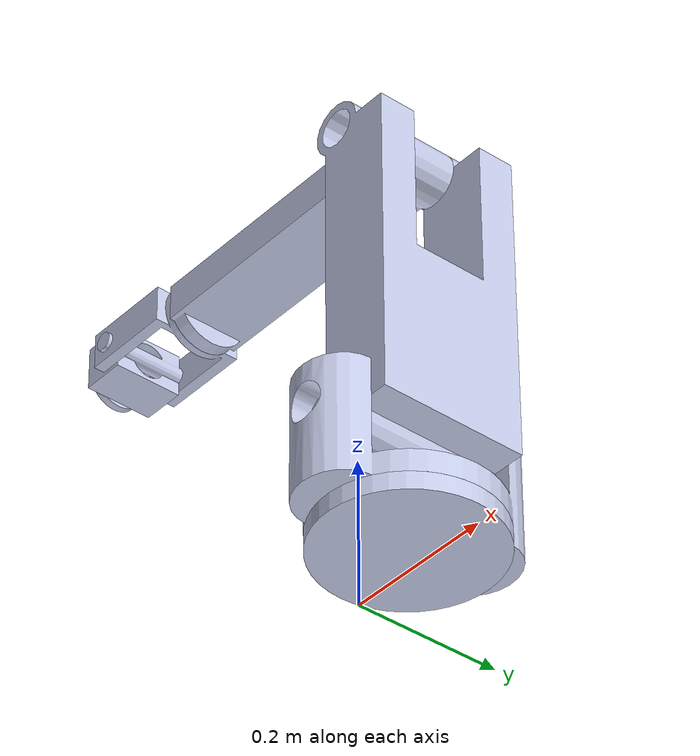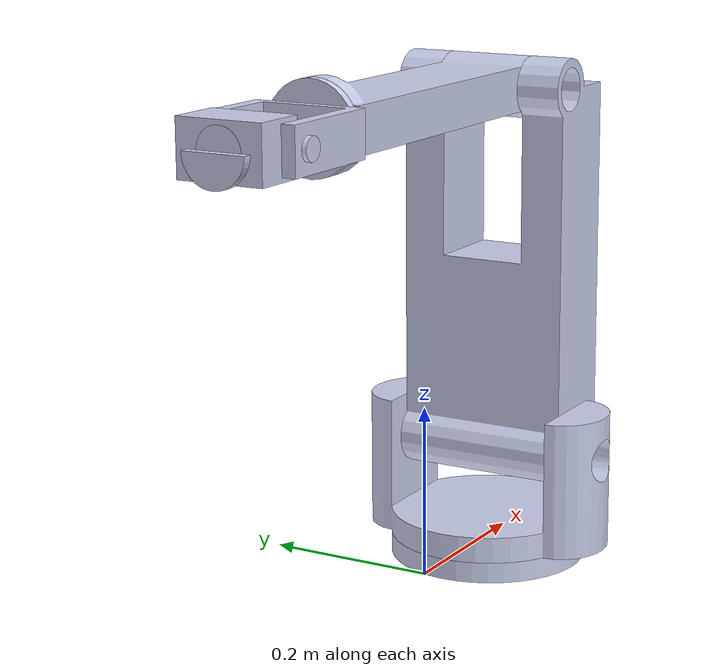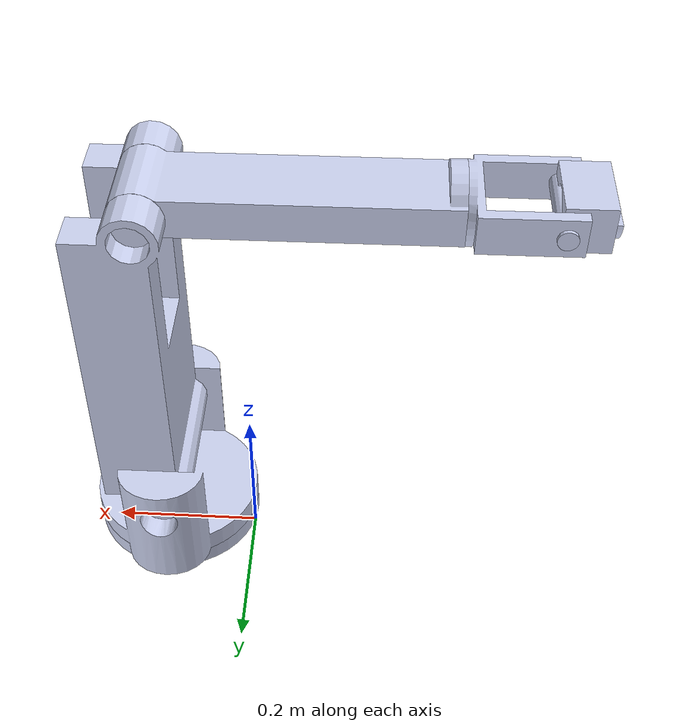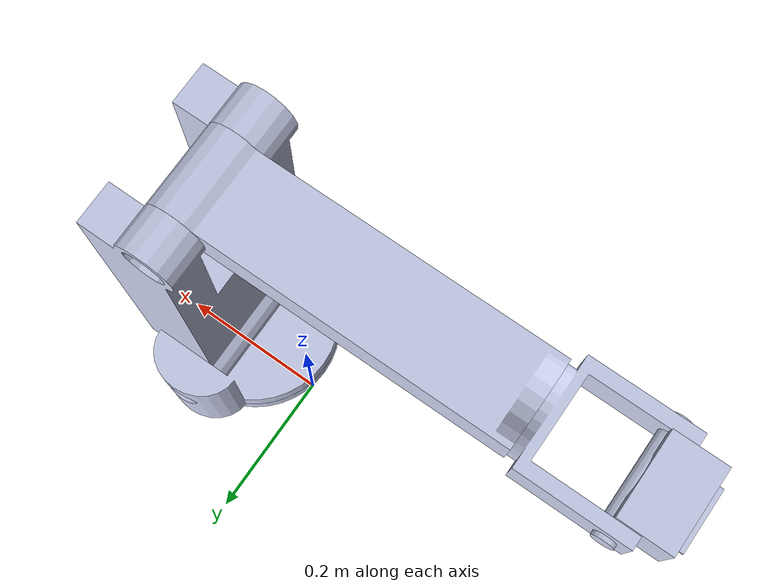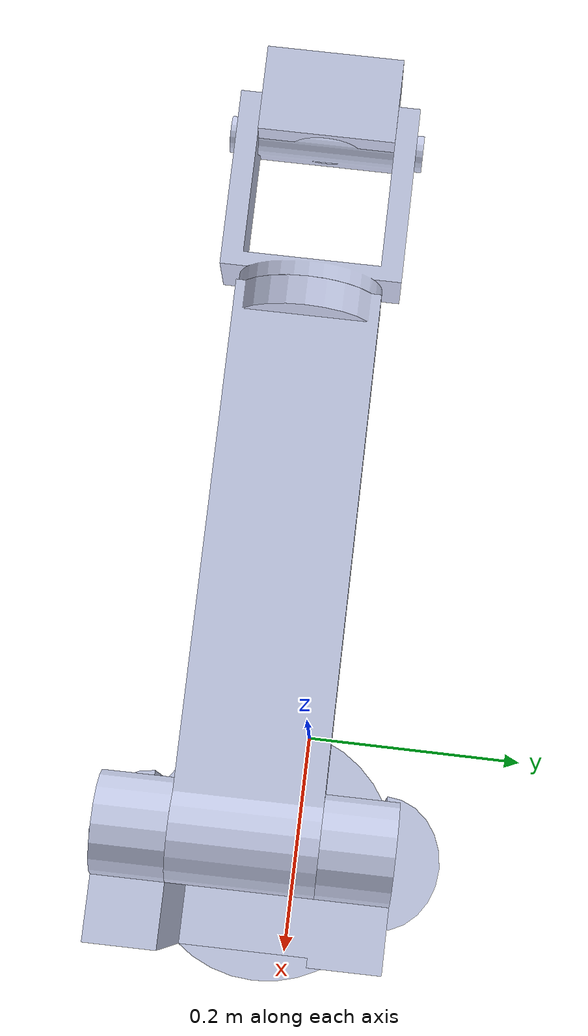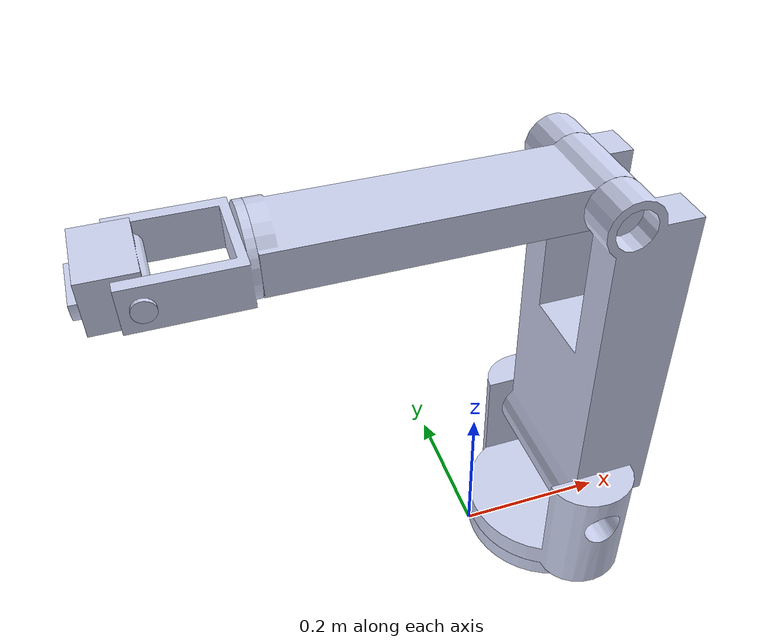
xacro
<?xml version="1.0"?>
<robot xmlns:xacro="http://www.ros.org/wiki/xacro" name="smarty">
    <xacro:arg name="initial_positions_file" default="initial_positions.yaml" />

    <!-- Import smarty urdf file -->
    <xacro:include filename="/home/lars/Downloads/smarty/urdf/smarty.urdf" />

    <!-- Import control_xacro -->
    <xacro:include filename="smarty.ros2_control.xacro" />

    <xacro:smarty_ros2_control name="FakeSystem" initial_positions_file="$(arg initial_positions_file)"/>

</robot>

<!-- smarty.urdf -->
<robot
  name="smarty">
  <link
    name="base_link">
    <inertial>
      <origin
        xyz="0.112458894705058 0.0119999999999999 0.0240415682041871"
        rpy="0 0 0" />
      <mass
        value="0.997141508249401" />
      <inertia
        ixx="0.00334466190404555"
        ixy="0"
        ixz="2.95486633363188E-38"
        iyy="0.00659359822329916"
        iyz="1.13442333061348E-17"
        izz="0.00334466190404555" />
    </inertial>
    <visual>
      <origin
        xyz="0 0 0"
        rpy="0 0 0" />
      <geometry>
        <mesh
          filename="package://smarty/meshes/base_link.STL" />
      </geometry>
      <material
        name="">
        <color
          rgba="0.792156862745098 0.819607843137255 0.933333333333333 1" />
      </material>
    </visual>
    <collision>
      <origin
        xyz="0 0 0"
        rpy="0 0 0" />
      <geometry>
        <mesh
          filename="package://smarty/meshes/base_link.STL" />
      </geometry>
    </collision>
  </link>
  <link
    name="l1">
    <inertial>
      <origin
        xyz="2.72430254972394E-06 -4.84081027471439E-07 0.045986010607279"
        rpy="0 0 0" />
      <mass
        value="2.41301594757283" />
      <inertia
        ixx="0.0103221730581283"
        ixy="-5.49682431778409E-08"
        ixz="8.42502994562522E-09"
        iyy="0.0266896634837572"
        iyz="4.97119835846574E-08"
        izz="0.0267626968782476" />
    </inertial>
    <visual>
      <origin
        xyz="0 0 0"
        rpy="0 0 0" />
      <geometry>
        <mesh
          filename="package://smarty/meshes/l1.STL" />
      </geometry>
      <material
        name="">
        <color
          rgba="0.792156862745098 0.819607843137255 0.933333333333333 1" />
      </material>
    </visual>
    <collision>
      <origin
        xyz="0 0 0"
        rpy="0 0 0" />
      <geometry>
        <mesh
          filename="package://smarty/meshes/l1.STL" />
      </geometry>
    </collision>
  </link>
  <joint
    name="j1"
    type="continuous">
    <origin
      xyz="0.11246 -0.024042 0.024"
      rpy="0 0 1.5754" />
    <parent
      link="base_link" />
    <child
      link="l1" />
    <axis
      xyz="0 0 1" />
    <limit
      lower="-6.28"
      upper="6.28"
      effort="5"
      velocity="0.6" />
  </joint>
  <link
    name="l2">
    <inertial>
      <origin
        xyz="0.165231668339801 0.0273228433790217 4.23272528138341E-16"
        rpy="0 0 0" />
      <mass
        value="7.05015818581324" />
      <inertia
        ixx="0.0354826029217015"
        ixy="-0.00251465724544439"
        ixz="-2.77545591760922E-16"
        iyy="0.137700303292132"
        iyz="-6.61363325216158E-18"
        izz="0.114668018727875" />
    </inertial>
    <visual>
      <origin
        xyz="0 0 0"
        rpy="0 0 0" />
      <geometry>
        <mesh
          filename="package://smarty/meshes/l2.STL" />
      </geometry>
      <material
        name="">
        <color
          rgba="0.792156862745098 0.819607843137255 0.933333333333333 1" />
      </material>
    </visual>
    <collision>
      <origin
        xyz="0 0 0"
        rpy="0 0 0" />
      <geometry>
        <mesh
          filename="package://smarty/meshes/l2.STL" />
      </geometry>
    </collision>
  </link>
  <joint
    name="j2"
    type="continuous">
    <origin
      xyz="0 0 0.109"
      rpy="3.1416 -1.5708 0" />
    <parent
      link="l1" />
    <child
      link="l2" />
    <axis
      xyz="0 0 1" />
    <limit
      lower="-0.4"
      upper="1.6"
      effort="10"
      velocity="0.4" />
  </joint>
  <link
    name="l3">
    <inertial>
      <origin
        xyz="0.165739050222885 -6.66133814775094E-16 2.32452945780892E-16"
        rpy="0 0 0" />
      <mass
        value="2.2411047959635" />
      <inertia
        ixx="0.0026306785283506"
        ixy="1.27831567491137E-16"
        ixz="-3.10861091642328E-19"
        iyy="0.0366498495542086"
        iyz="5.20882606906334E-18"
        izz="0.0351581847803734" />
    </inertial>
    <visual>
      <origin
        xyz="0 0 0"
        rpy="0 0 0" />
      <geometry>
        <mesh
          filename="package://smarty/meshes/l3.STL" />
      </geometry>
      <material
        name="">
        <color
          rgba="0.792156862745098 0.819607843137255 0.933333333333333 1" />
      </material>
    </visual>
    <collision>
      <origin
        xyz="0 0 0"
        rpy="0 0 0" />
      <geometry>
        <mesh
          filename="package://smarty/meshes/l3.STL" />
      </geometry>
    </collision>
  </link>
  <joint
    name="j3"
    type="continuous">
    <origin
      xyz="0.425 0 0"
      rpy="0 0 -1.5708" />
    <parent
      link="l2" />
    <child
      link="l3" />
    <axis
      xyz="0 0 1" />
    <limit
      lower="-1.1"
      upper="1.1"
      effort="10"
      velocity="0.4" />
  </joint>
  <link
    name="l4">
    <inertial>
      <origin
        xyz="-7.94503351997378E-16 0 0.0436685322374739"
        rpy="0 0 0" />
      <mass
        value="0.298813600776043" />
      <inertia
        ixx="0.000585663342419047"
        ixy="-2.82781005691958E-19"
        ixz="-1.86855468164299E-18"
        iyy="0.00109888441659249"
        iyz="-5.94177153381262E-19"
        izz="0.000708162025673873" />
    </inertial>
    <visual>
      <origin
        xyz="0 0 0"
        rpy="0 0 0" />
      <geometry>
        <mesh
          filename="package://smarty/meshes/l4.STL" />
      </geometry>
      <material
        name="">
        <color
          rgba="0.792156862745098 0.819607843137255 0.933333333333333 1" />
      </material>
    </visual>
    <collision>
      <origin
        xyz="0 0 0"
        rpy="0 0 0" />
      <geometry>
        <mesh
          filename="package://smarty/meshes/l4.STL" />
      </geometry>
    </collision>
  </link>
  <joint
    name="j4"
    type="continuous">
    <origin
      xyz="0.375 0 0"
      rpy="0 1.5708 0" />
    <parent
      link="l3" />
    <child
      link="l4" />
    <axis
      xyz="0 0 1" />
    <limit
      lower="-6.28"
      upper="6.28"
      effort="5"
      velocity="3.14" />
  </joint>
  <link
    name="l5">
    <inertial>
      <origin
        xyz="1.02499020035451E-09 6.67443489366093E-09 0.0203390758636098"
        rpy="0 0 0" />
      <mass
        value="0.273297613750633" />
      <inertia
        ixx="0.000182445897734845"
        ixy="5.35819967971489E-11"
        ixz="-3.57537126337979E-12"
        iyy="0.000413096157847315"
        iyz="-1.41751468883735E-10"
        izz="0.000402699107964568" />
    </inertial>
    <visual>
      <origin
        xyz="0 0 0"
        rpy="0 0 0" />
      <geometry>
        <mesh
          filename="package://smarty/meshes/l5.STL" />
      </geometry>
      <material
        name="">
        <color
          rgba="0.792156862745098 0.819607843137255 0.933333333333333 1" />
      </material>
    </visual>
    <collision>
      <origin
        xyz="0 0 0"
        rpy="0 0 0" />
      <geometry>
        <mesh
          filename="package://smarty/meshes/l5.STL" />
      </geometry>
    </collision>
  </link>
  <joint
    name="j5"
    type="continuous">
    <origin
      xyz="0 0 0.112"
      rpy="0 0 0" />
    <parent
      link="l4" />
    <child
      link="l5" />
    <axis
      xyz="1 0 0" />
    <limit
      lower="-1.6"
      upper="1.6"
      effort="2"
      velocity="3.14" />
  </joint>
  <link
    name="l6">
    <inertial>
      <origin
        xyz="7.3899220076612E-16 -0.0036576311879748 0.0199237687937331"
        rpy="0 0 0" />
      <mass
        value="0.0781471172580461" />
      <inertia
        ixx="2.44312541272295E-05"
        ixy="1.37390888459256E-19"
        ixz="1.51036562407282E-19"
        iyy="2.54767270417922E-05"
        iyz="4.30904522613063E-06"
        izz="2.91481777295479E-05" />
    </inertial>
    <visual>
      <origin
        xyz="0 0 0"
        rpy="0 0 0" />
      <geometry>
        <mesh
          filename="package://smarty/meshes/l6.STL" />
      </geometry>
      <material
        name="">
        <color
          rgba="0.792156862745098 0.819607843137255 0.933333333333333 1" />
      </material>
    </visual>
    <collision>
      <origin
        xyz="0 0 0"
        rpy="0 0 0" />
      <geometry>
        <mesh
          filename="package://smarty/meshes/l6.STL" />
      </geometry>
    </collision>
  </link>
  <joint
    name="j6"
    type="continuous">
    <origin
      xyz="0 0 0.025001"
      rpy="0 0 0" />
    <parent
      link="l5" />
    <child
      link="l6" />
    <axis
      xyz="0 0 1" />
    <limit
      lower="-6.28"
      upper="6.28"
      effort="2"
      velocity="3.14" />
  </joint>
</robot>
